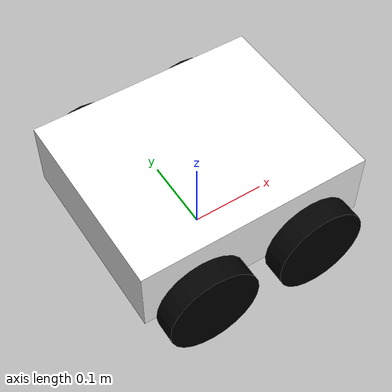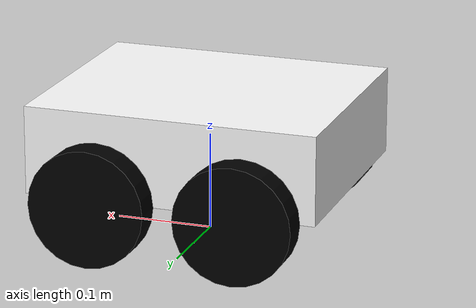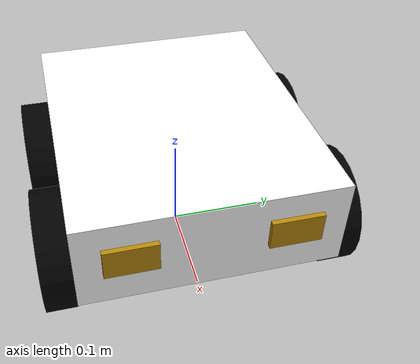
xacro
<?xml version="1.0"?>
<robot name="my_robot" xmlns:xacro="http://www.ros.org/wiki/xacro">

    <xacro:include filename="common_properties.xacro"/>
    <xacro:include filename="mobile_base.xacro"/>
    <xacro:include filename="mobile_base_gazebo.xacro"/>

    <xacro:include filename="camera.xacro"/>

</robot>

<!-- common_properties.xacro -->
<robot xmlns:xacro="http://www.ros.org/wiki/xacro">

    <material name="black">
        <color rgba="0 0 0 1" />
    </material>

    <material name="grey" >
        <color rgba="1 1 1 1" />
    </material>

        <material name="white" >
        <color rgba="1 1 1 1" />
    </material>

    <material name="gold">
        <color rgba="0.72 0.53 0.04 1" />
    </material>

    <xacro:macro name="box_inertia" params="m l w h xyz rpy">
        <inertial>
            <origin xyz="${xyz}" rpy="${rpy}"/>
            <mass value="${m}"/>
            <inertia ixx="${(m/12) * (h*h + l*l)}" ixy="0" ixz="0"
                     iyy="${(m/12) * (w*w + h*h)}" iyz="0"
                     izz="${(m/12) * (w*w + l*l)}" />
        </inertial>
    </xacro:macro>

    <xacro:macro name="cylinder_inertia" params="m r h xyz rpy">
        <inertial>
            <origin xyz="${xyz}" rpy="${rpy}"/>
            <mass value="${m}"/>
            <inertia ixx="${(m/12) * (3*r*r + h*h)}" ixy="0" ixz="0"
                     iyy="${(m/12) * (3*r*r + h*h)}" iyz="0"
                     izz="${(m/2) * r*r}" />
        </inertial>
    </xacro:macro>

</robot>

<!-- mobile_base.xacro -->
<robot xmlns:xacro="http://www.ros.org/wiki/xacro">

   <xacro:property name="base_length" value="0.3" />
   <xacro:property name="base_width" value="0.25" />
   <xacro:property name="base_height" value="0.09" />
   <xacro:property name="wheel_radius" value="0.06" />
   <xacro:property name="wheel_length" value="0.03" />

   <link name="base_footprint">
   </link>

   <link name="base_link">
       <visual>
           <geometry>
               <box size="${base_length} ${base_width} ${base_height}" />            </geometry>
           <origin xyz="0 0 ${base_height / 2.0 }" rpy="0 0 0" />
           <material name="white" />
       </visual>
       <collision>
           <geometry>
               <box size="${base_length} ${base_width} ${base_height}" />
           </geometry>
           <origin xyz="0 0 ${base_height / 2.0}" rpy="0 0 0" />
       </collision>
       <xacro:box_inertia m="6.0" l="${base_length}" w="${base_width}" h="${base_height}"
                          xyz="0 0 ${base_height / 2.0}" rpy="0 0 0"/>
   </link>

   <xacro:macro name="wheel_link" params="prefix direct">
       <link name="${prefix}_wheel_${direct}_link">
           <visual>
               <geometry>
                   <cylinder radius="${wheel_radius}" length="${wheel_length}"/>
               </geometry>
               <origin xyz="0 0 0" rpy="${pi / 2.0} 0 0" />
               <material name="black"/>
           </visual>
           <collision>
               <geometry>
                   <cylinder radius="${wheel_radius}" length="${wheel_length}"/>
               </geometry>
               <origin xyz="0 0 0" rpy="${pi / 2.0} 0 0" />
           </collision>
           <xacro:cylinder_inertia m="0.5" r="${wheel_radius}" h="${wheel_length}"
                                   xyz="0 0 0" rpy="${pi / 2.0} 0 0"/>
       </link>
   </xacro:macro>

   <xacro:wheel_link prefix="right" direct="back" />
   <xacro:wheel_link prefix="right" direct="front" />
   <xacro:wheel_link prefix="left" direct="back" />
   <xacro:wheel_link prefix="left" direct="front" />

   <joint name="base_joint" type="fixed">
       <parent link="base_footprint"/>
       <child link="base_link"/>
       <origin xyz="0 0 ${wheel_radius}" rpy="0 0 0"/>
   </joint>

   <joint name="base_right_wheel_back_joint" type="continuous">
        <parent link="base_link" />
        <child link="right_wheel_back_link" />
        <origin xyz="${-base_length / 4.0} ${-(base_width + wheel_length) / 2.0} 0" rpy="0 0 0" />
        <limit effort="10" velocity="10"/>
        <axis xyz="0 1 0" />
   </joint>

   <joint name="base_right_wheel_front_joint" type="fixed">
        <parent link="base_link" />
        <child link="right_wheel_front_link" />
        <origin xyz="${base_length / 4.0} ${-(base_width + wheel_length) / 2.0}  0" rpy="0 0 0" />
        <limit effort="0.0" velocity="0.0"/>
        <dynamics damping="0.0" friction="0.0"/>
   </joint>

   <joint name="base_left_wheel_back_joint" type="continuous">
        <parent link="base_link" />
        <child link="left_wheel_back_link" />
        <origin xyz="${-base_length / 4.0} ${(base_width + wheel_length) / 2.0}  0" rpy="0 0 0" />
        <limit effort="10" velocity="10"/>
        <axis xyz="0 1 0" />
   </joint>

   <joint name="base_left_wheel_front_joint" type="fixed">
        <parent link="base_link" />
        <child link="left_wheel_front_link" />
        <origin xyz="${base_length / 4.0} ${(base_width + wheel_length) / 2.0}  0" rpy="0 0 0" />
        <limit effort="0.0" velocity="0.0"/>
        <dynamics damping="0.0" friction="0.0"/>
   </joint>

</robot>

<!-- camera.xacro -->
<robot xmlns:xacro="http://www.ros.org/wiki/xacro">

<!-- ====== PROPRIÉTÉS ====== -->
<xacro:property name="camera_length" value="0.005"/>
<xacro:property name="camera_width" value="0.05"/>
<xacro:property name="camera_height" value="0.03"/>
<xacro:property name="camera_baseline" value="0.15"/>
<xacro:property name="base_length" value="0.3"/>
<xacro:property name="base_height" value="0.1"/>

<!-- ====== Camera Calibration Parameters ====== -->
<xacro:property name="fx" value="217.08247"/>
<xacro:property name="fy" value="217.08247"/>
<xacro:property name="cx" value="376.5"/>
<xacro:property name="cy" value="240.5"/>
<xacro:property name="k1" value="0.0"/>
<xacro:property name="k2" value="0.0"/>
<xacro:property name="p1" value="0.0"/>
<xacro:property name="p2" value="0.0"/>
<xacro:property name="bf" value="32.565"/>

<!-- ========== LEFT CAMERA ========== -->
<link name="left_camera_link">
  <visual>
    <geometry>
      <box size="${camera_length} ${camera_width} ${camera_height}"/>
    </geometry>
    <material name="gold"/>
  </visual>
  <collision>
    <geometry>
      <box size="${camera_length} ${camera_width} ${camera_height}"/>
    </geometry>
  </collision>
</link>

<joint name="base_left_camera_joint" type="fixed">
  <parent link="base_link"/>
  <child link="left_camera_link"/>
  <origin xyz="${(base_length + camera_length) / 2.0} ${camera_baseline / 2.0} ${base_height / 2.0}" rpy="0 0 0"/>
</joint>

<link name="left_camera_optical_link"/>
<joint name="left_camera_optical_joint" type="fixed">
  <origin xyz="0 0 0" rpy="${-pi/2} 0 ${-pi/2}"/>
  <parent link="left_camera_link"/>
  <child link="left_camera_optical_link"/>
</joint>

<gazebo reference="left_camera_link">
  <material>Gazebo/Gold</material>
  <sensor name="left_camera_sensor" type="camera">
    <pose>0 0 0 0 0 0</pose>
    <visualize>true</visualize>
    <update_rate>15.0</update_rate>
    <camera>
      <horizontal_fov>2.0943951</horizontal_fov>
      <image>
        <width>752</width>
        <height>480</height>
        <format>R8G8B8</format>
      </image>
      <clip>
        <near>0.1</near>
        <far>100</far>
      </clip>
      <distortion>
        <k1>${k1}</k1>
        <k2>${k2}</k2>
        <k3>0.0</k3>
        <p1>${p1}</p1>
        <p2>${p2}</p2>
        <center>${cx} ${cy}</center>
      </distortion>
      <intrinsics>
        <fx>${fx}</fx>
        <fy>${fy}</fy>
        <cx>${cx}</cx>
        <cy>${cy}</cy>
      </intrinsics>
    </camera>
    <plugin name="left_camera_controller" filename="libgazebo_ros_camera.so">
      <frame_name>left_camera_optical_link</frame_name>
      <camera_name>left_camera</camera_name>
      <image_width>752</image_width>
      <image_height>480</image_height>
      <ros>
        <namespace>/camera/left</namespace>
        <remapping>image_raw:=image</remapping>
        <parameter name="publish_image">true</parameter>
        <parameter name="publish_compressed">false</parameter>
        <parameter name="publish_depth">false</parameter>
        <parameter name="disable_pub_plugins">["compressed", "compressedDepth", "theora"]</parameter>
      </ros>
    </plugin>
  </sensor>
</gazebo>

<!-- ========== RIGHT CAMERA ========== -->
<link name="right_camera_link">
  <visual>
    <geometry>
      <box size="${camera_length} ${camera_width} ${camera_height}"/>
    </geometry>
    <material name="gold"/>
  </visual>
  <collision>
    <geometry>
      <box size="${camera_length} ${camera_width} ${camera_height}"/>
    </geometry>
  </collision>
</link>

<joint name="base_right_camera_joint" type="fixed">
  <parent link="base_link"/>
  <child link="right_camera_link"/>
  <origin xyz="${(base_length + camera_length) / 2.0} ${-camera_baseline / 2.0} ${base_height / 2.0}" rpy="0 0 0"/>
</joint>

<link name="right_camera_optical_link"/>
<joint name="right_camera_optical_joint" type="fixed">
  <origin xyz="0 0 0" rpy="${-pi/2} 0 ${-pi/2}"/>
  <parent link="right_camera_link"/>
  <child link="right_camera_optical_link"/>
</joint>

<gazebo reference="right_camera_link">
  <material>Gazebo/Gold</material>
  <sensor name="right_camera_sensor" type="camera">
    <pose>0 0 0 0 0 0</pose>
    <visualize>true</visualize>
    <update_rate>15.0</update_rate>
    <camera>
      <horizontal_fov>2.0943951</horizontal_fov>
      <image>
        <width>752</width>
        <height>480</height>
        <format>R8G8B8</format>
      </image>
      <clip>
        <near>0.1</near>
        <far>100</far>
      </clip>
      <distortion>
        <k1>${k1}</k1>
        <k2>${k2}</k2>
        <k3>0.0</k3>
        <p1>${p1}</p1>
        <p2>${p2}</p2>
        <center>${cx} ${cy}</center>
      </distortion>
      <intrinsics>
        <fx>${fx}</fx>
        <fy>${fy}</fy>
        <cx>${cx}</cx>
        <cy>${cy}</cy>
      </intrinsics>
    </camera>
    <plugin name="right_camera_controller" filename="libgazebo_ros_camera.so">
      <frame_name>right_camera_optical_link</frame_name>
      <camera_name>right_camera</camera_name>
      <image_width>752</image_width>
      <image_height>480</image_height>
      <ros>
        <namespace>/camera/right</namespace>
        <remapping>image_raw:=image</remapping>
        <parameter name="publish_image">true</parameter>
        <parameter name="publish_compressed">false</parameter>
        <parameter name="publish_depth">false</parameter>
        <parameter name="disable_pub_plugins">["compressed", "compressedDepth", "theora"]</parameter>
      </ros>
    </plugin>
  </sensor>
</gazebo>

</robot>
